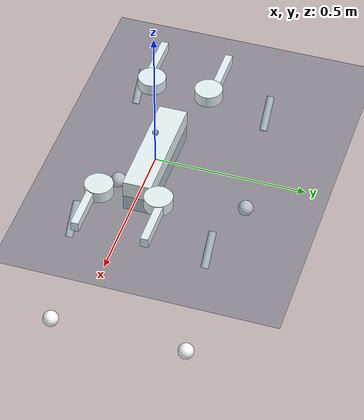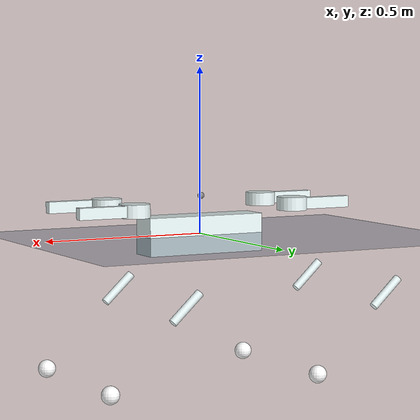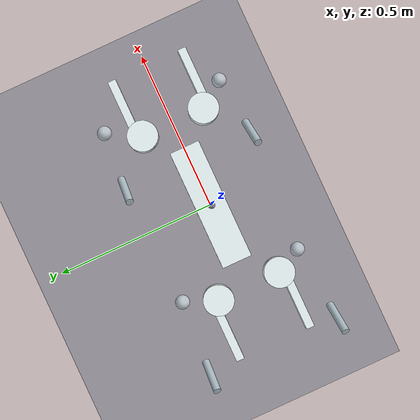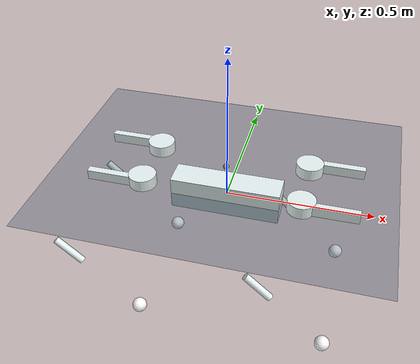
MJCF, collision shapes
<mujoco model="bruce scene">
  <include file="bruce_mj.xml"/>

  <statistic center="0 0 .3" extent="1.2"/>

  <visual>
    <headlight diffuse="0.6 0.6 0.6" ambient="0.3 0.3 0.3" specular="0 0 0"/>
    <rgba haze="0.15 0.25 0.35 1"/>
    <global azimuth="120" elevation="-20"/>
  </visual>

  <asset>
    <texture type="skybox" builtin="gradient" rgb1="0.3 0.5 0.7" rgb2="0 0 0" width="512" height="3072"/>
    <texture type="2d" name="groundplane" builtin="checker" mark="edge" rgb1="0.2 0.3 0.4" rgb2="0.1 0.2 0.3"
      markrgb="0.8 0.8 0.8" width="300" height="300"/>
    <material name="groundplane" texture="groundplane" texuniform="true" texrepeat="5 5" reflectance="0.2"/>
  </asset>

  <worldbody>
    <light pos="0 0 1.5" dir="0 0 -1" directional="true"/>
    <geom name="floor" size="0 0 0.05" type="plane" material="groundplane"/>
  </worldbody>
</mujoco>

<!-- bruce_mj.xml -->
<mujoco model="bruce">
  <compiler angle="radian" meshdir="assets" autolimits="true" balanceinertia="true"/>
  <option cone="elliptic" impratio="100" timestep="0.002"/>

  <default>
    <default class="visual">
      <geom contype="0" conaffinity="0" group="2" material="gray"/>
    </default>
    <default class="collision">
      <geom group="3" material="metal" friction="0.4 0.02 0.01"/>
    </default>
    <default class="actuator">
      <motor ctrlrange="-200 200" ctrllimited="true"/>
    </default>

    <!-- 关节默认参数 -->
    <default class="abduction">
      <joint axis="1 0 0" damping="0.1" armature="0.01" frictionloss="0.2"/>
    </default>
    <default class="hip">
      <joint axis="0 1 0" damping="0.1" armature="0.01" frictionloss="0.2"/>
    </default>
    <default class="knee">
      <joint axis="0 1 0" damping="0.1" armature="0.01" frictionloss="0.2"/>
    </default>
  </default>

    <asset>
        <material name="metal" rgba=".9 .95 .95 1" />
        <material name="black" rgba="0 0 0 1" />
        <material name="white" rgba="1 1 1 1" />
        <material name="gray" rgba="0.75294 0.75294 0.75294 1" />
        <material name="transparent" rgba="1 1 1 0.01" />

        <!-- 基座网格 -->
        <mesh file="base_link.STL" />

        <!-- 腿部网格 -->
        <mesh file="Link_FL_Hip.STL" />
        <mesh file="Link_FL_Thigh.STL" />
        <mesh file="Link_FL_Calf.STL" />
        <mesh file="Link_FL_Foot.STL" />

        <mesh file="Link_FR_Hip.STL" />
        <mesh file="Link_FR_Thigh.STL" />
        <mesh file="Link_FR_Calf.STL" />
        <mesh file="Link_FR_Foot.STL" />

        <mesh file="Link_HL_Hip.STL" />
        <mesh file="Link_HL_Thigh.STL" />
        <mesh file="Link_HL_Calf.STL" />
        <mesh file="Link_HL_Foot.STL" />

        <mesh file="Link_HR_Hip.STL" />
        <mesh file="Link_HR_Thigh.STL" />
        <mesh file="Link_HR_Calf.STL" />
        <mesh file="Link_HR_Foot.STL" />

        <mesh file="Link_Imu.STL" />
    </asset>

    <worldbody>
        <body name="base_link" pos="0 0 0">
            <inertial pos="0.00014047 -0.00088602 0.074729" mass="23.629" diaginertia="0.054484 0.12489 0.12873"/>
            <freejoint/>
            <geom type="mesh" mesh="base_link" material="gray" class="visual"/>
            <geom size="0.1881 0.04675 0.057" type="box" class="collision"/>

            <!-- IMU -->
            <site name="imu" pos="-0.0040103 0 0.114" size="0.01"/>
            <geom pos="-0.0040103 0 0.114" type="mesh" mesh="Link_Imu" class="visual" material="white"/>

            <!-- 前左腿 -->
            <body name="FL_hip" pos="0.2635 0.0975 0.088">
                <inertial pos="0.071488 -0.01672 -4.7324E-05" mass="2.9" diaginertia="0.00042335 0.0010234 0.00063315"/>
                <joint name="FL_hip_joint" class="abduction" range="-0.78 0.78"/>
                <geom type="mesh" mesh="Link_FL_Hip" class="visual"/>
                <geom size="0.046 0.02" type="cylinder" class="collision"/>
                <body name="FL_thigh" pos="0.07725 0.01475 0">
                    <inertial pos="-0.044216 0.098313 -0.056091" mass="5.58" diaginertia="0.013192 0.022095 0.0093309"/>
                    <joint name="FL_thigh_joint" class="hip" range="-1.22 2.61"/>
                    <geom type="mesh" mesh="Link_FL_Thigh" class="visual"/>
                    <geom size="0.1065 0.01225 0.017" type="box" class="collision"/>
                    <body name="FL_calf" pos="-0.17662 0.11925 -0.27282" quat="0.916975 0 -0.398944 0">
                        <inertial pos="0.00831504007924233 2.04280116085087E-05 -0.149346339600864" mass="1.0558984918551" diaginertia="0.0158759027698112 0.0161104978528813 0.000461995654151211"/>
                        <joint name="FL_calf_joint" class="knee" range="-1.3 0.52"/>
                        <geom type="mesh" mesh="Link_FL_Calf" class="visual"/>
                        <geom size="0.013 0.06" type="cylinder" class="collision"/>
                        <body name="FL_foot" pos="-0.0052369 -3.0756E-05 -0.33328" quat="0.916975 0 0.398944 0">
                            <inertial pos="2.03976966761665E-07 -3.49370387453529E-06 -0.0232846790067169" mass="0.207210160440462" diaginertia="8.28679461308315E-05 0.000134761885893141 0.000154364742055223"/>
                            <geom type="mesh" mesh="Link_FL_Foot" material="black" class="visual"/>
                            <geom size="0.027" type="sphere" class="collision" material="transparent"/>
                            <site name="FL_foot_site" pos="0 0 0" size="0.005"/>
                        </body>
                    </body>
                </body>
            </body>

            <!-- 前右腿-->
            <body name="FR_hip" pos="0.2635 -0.0975 0.088">
                <inertial pos="0.071488 0.01672 4.7324E-05" mass="2.9" diaginertia="0.00042335 0.0010234 0.00063315"/>
                <joint name="FR_hip_joint" class="abduction" range="-0.78 0.78"/>
                <geom type="mesh" mesh="Link_FR_Hip" class="visual"/>
                <geom size="0.046 0.02" type="cylinder" class="collision"/>
                <body name="FR_thigh" pos="0.07725 -0.01475 0">
                    <inertial pos="-0.044283 -0.09836 -0.056051" mass="5.58" diaginertia="0.013228 0.022116 0.0093162"/>
                    <joint name="FR_thigh_joint" class="hip" range="-1.22 2.61"/>
                    <geom type="mesh" mesh="Link_FR_Thigh" class="visual"/>
                    <geom size="0.1065 0.01225 0.017" type="box" class="collision"/>
                    <body name="FR_calf" pos="-0.17662 -0.11925 -0.27282" quat="0.916975 0 -0.398944 0">
                        <inertial pos="0.00831504035394826 2.04277784137952E-05 -0.149346341163595" mass="1.05589847316517" diaginertia="0.0158759025959391 0.016110497677588 0.000461995644802376"/>
                        <joint name="FR_calf_joint" class="knee" range="-1.3 0.52"/>
                        <geom type="mesh" mesh="Link_FR_Calf" class="visual"/>
                        <geom size="0.013 0.06" type="cylinder" class="collision"/>
                        <body name="FR_foot" pos="-0.0052369 -3.0756E-05 -0.33328" quat="0.916975 0 0.398944 0">
                            <inertial pos="2.03977359281016E-07 -3.49370187453529E-06 -0.0232846790067169" mass="0.207210160440462" diaginertia="8.28679461308315E-05 0.000134761885893141 0.000154364742055223"/>
                            <geom type="mesh" mesh="Link_FR_Foot" material="black" class="visual"/>
                            <geom size="0.027" type="sphere" class="collision" material="transparent"/>
                            <site name="FR_foot_site" pos="0 0 0" size="0.005"/>
                        </body>
                    </body>
                </body>
            </body>

            <!-- 后左腿-->
            <body name="HL_hip" pos="-0.2635 0.0975 0.088">
                <inertial pos="-0.071488 -0.01672 4.7324E-05" mass="2.9" diaginertia="0.00042335 0.0010234 0.00063315"/>
                <joint name="HL_hip_joint" class="abduction" range="-0.78 0.78"/>
                <geom type="mesh" mesh="Link_HL_Hip" class="visual"/>
                <geom size="0.046 0.02" type="cylinder" class="collision"/>
                <body name="HL_thigh" pos="-0.07725 0.01475 0">
                    <inertial pos="-0.044216 0.098313 -0.056091" mass="5.58" diaginertia="0.013192 0.022095 0.0093309"/>
                    <joint name="HL_thigh_joint" class="hip" range="-1.22 2.61"/>
                    <geom type="mesh" mesh="Link_HL_Thigh" class="visual"/>
                    <geom size="0.1065 0.01225 0.017" type="box" class="collision"/>
                    <body name="HL_calf" pos="-0.17662 0.11925 -0.27282" quat="0.916975 0 -0.398944 0">
                        <inertial pos="0.00831504038311021 2.04282154486757E-05 -0.14934634134056" mass="1.05589847179624" diaginertia="0.0158759025719917 0.0161104976518646 0.000461995645412917"/>
                        <joint name="HL_calf_joint" class="knee" range="-1.3 0.52"/>
                        <geom type="mesh" mesh="Link_HL_Calf" class="visual"/>
                        <geom size="0.013 0.06" type="cylinder" class="collision"/>
                        <body name="HL_foot" pos="-0.0052369 -3.0756E-05 -0.33328" quat="0.916975 0 0.398944 0">
                            <inertial pos="2.03976984913812E-07 -3.49370198221566E-06 -0.0232846790072918" mass="0.207210160452256" diaginertia="8.28679461309755E-05 0.000134761885893068 0.000154364742053954"/>
                            <geom type="mesh" mesh="Link_HL_Foot" material="black" class="visual"/>
                            <geom size="0.027" type="sphere" class="collision" material="transparent"/>
                            <site name="HL_foot_site" pos="0 0 0" size="0.005"/>
                        </body>
                    </body>
                </body>
            </body>

            <!-- 后右腿-->
            <body name="HR_hip" pos="-0.2635 -0.0975 0.088">
                <inertial pos="-0.071488 0.01672 -4.7324E-05" mass="2.9" diaginertia="0.00042335 0.0010234 0.00063315"/>
                <joint name="HR_hip_joint" class="abduction" range="-0.78 0.78"/>
                <geom type="mesh" mesh="Link_HR_Hip" class="visual"/>
                <geom size="0.046 0.02" type="cylinder" class="collision"/>
                <body name="HR_thigh" pos="-0.07725 -0.01475 0">
                    <inertial pos="-0.044283 -0.09836 -0.056051" mass="5.58" diaginertia="0.013228 0.022116 0.0093162"/>
                    <joint name="HR_thigh_joint" class="hip" range="-1.22 2.61"/>
                    <geom type="mesh" mesh="Link_HR_Thigh" class="visual"/>
                    <geom size="0.1065 0.01225 0.017" type="box" class="collision"/>
                    <body name="HR_calf" pos="-0.17662 -0.11925 -0.27282" quat="0.916975 0 -0.398944 0">
                        <inertial pos="0.00831504035394826 2.04277784137952E-05 -0.149346341163595" mass="1.05589847316517" diaginertia="0.0158759025959391 0.016110497677588 0.000461995644802376"/>
                        <joint name="HR_calf_joint" class="knee" range="-1.3 0.52"/>
                        <geom type="mesh" mesh="Link_HR_Calf" class="visual"/>
                        <geom size="0.013 0.06" type="cylinder" class="collision"/>
                        <body name="HR_foot" pos="-0.0052369 -3.0756E-05 -0.33328" quat="0.916975 0 0.398944 0">
                            <inertial pos="2.03977359281016E-07 -3.49370187453529E-06 -0.0232846790067169" mass="0.207210160452256" diaginertia="8.28679461309755E-05 0.000134761885893068 0.000154364742053954"/>
                            <geom type="mesh" mesh="Link_HR_Foot" material="black" class="visual"/>
                            <geom size="0.027" type="sphere" class="collision" material="transparent"/>
                            <site name="HR_foot_site" pos="0 0 0" size="0.005"/>
                        </body>
                    </body>
                </body>
            </body>

        </body>
    </worldbody>

    <actuator>
        <motor joint="FL_hip_joint" name="FL_hip_motor" class="actuator"/>
        <motor joint="FL_thigh_joint" name="FL_thigh_motor" class="actuator"/>
        <motor joint="FL_calf_joint" name="FL_calf_motor" class="actuator"/>

        <motor joint="FR_hip_joint" name="FR_hip_motor" class="actuator"/>
        <motor joint="FR_thigh_joint" name="FR_thigh_motor" class="actuator"/>
        <motor joint="FR_calf_joint" name="FR_calf_motor" class="actuator"/>

        <motor joint="HL_hip_joint" name="HL_hip_motor" class="actuator"/>
        <motor joint="HL_thigh_joint" name="HL_thigh_motor" class="actuator"/>
        <motor joint="HL_calf_joint" name="HL_calf_motor" class="actuator"/>

        <motor joint="HR_hip_joint" name="HR_hip_motor" class="actuator"/>
        <motor joint="HR_thigh_joint" name="HR_thigh_motor" class="actuator"/>
        <motor joint="HR_calf_joint" name="HR_calf_motor" class="actuator"/>
    </actuator>

    <sensor>
        <!-- 关节位置传感器 -->
        <jointpos name="FL_hip_pos" joint="FL_hip_joint"/>
        <jointpos name="FL_thigh_pos" joint="FL_thigh_joint"/>
        <jointpos name="FL_calf_pos" joint="FL_calf_joint"/>

        <jointpos name="FR_hip_pos" joint="FR_hip_joint"/>
        <jointpos name="FR_thigh_pos" joint="FR_thigh_joint"/>
        <jointpos name="FR_calf_pos" joint="FR_calf_joint"/>

        <jointpos name="HL_hip_pos" joint="HL_hip_joint"/>
        <jointpos name="HL_thigh_pos" joint="HL_thigh_joint"/>
        <jointpos name="HL_calf_pos" joint="HL_calf_joint"/>

        <jointpos name="HR_hip_pos" joint="HR_hip_joint"/>
        <jointpos name="HR_thigh_pos" joint="HR_thigh_joint"/>
        <jointpos name="HR_calf_pos" joint="HR_calf_joint"/>

        <!-- 关节速度传感器 -->
        <jointvel name="FL_hip_vel" joint="FL_hip_joint"/>
        <jointvel name="FL_thigh_vel" joint="FL_thigh_joint"/>
        <jointvel name="FL_calf_vel" joint="FL_calf_joint"/>

        <jointvel name="FR_hip_vel" joint="FR_hip_joint"/>
        <jointvel name="FR_thigh_vel" joint="FR_thigh_joint"/>
        <jointvel name="FR_calf_vel" joint="FR_calf_joint"/>

        <jointvel name="HL_hip_vel" joint="HL_hip_joint"/>
        <jointvel name="HL_thigh_vel" joint="HL_thigh_joint"/>
        <jointvel name="HL_calf_vel" joint="HL_calf_joint"/>

        <jointvel name="HR_hip_vel" joint="HR_hip_joint"/>
        <jointvel name="HR_thigh_vel" joint="HR_thigh_joint"/>
        <jointvel name="HR_calf_vel" joint="HR_calf_joint"/>

        <!-- 关节扭矩传感器 -->
        <jointactuatorfrc name="FL_hip_torque" joint="FL_hip_joint"/>
        <jointactuatorfrc name="FL_thigh_torque" joint="FL_thigh_joint"/>
        <jointactuatorfrc name="FL_calf_torque" joint="FL_calf_joint"/>

        <jointactuatorfrc name="FR_hip_torque" joint="FR_hip_joint"/>
        <jointactuatorfrc name="FR_thigh_torque" joint="FR_thigh_joint"/>
        <jointactuatorfrc name="FR_calf_torque" joint="FR_calf_joint"/>

        <jointactuatorfrc name="HL_hip_torque" joint="HL_hip_joint"/>
        <jointactuatorfrc name="HL_thigh_torque" joint="HL_thigh_joint"/>
        <jointactuatorfrc name="HL_calf_torque" joint="HL_calf_joint"/>

        <jointactuatorfrc name="HR_hip_torque" joint="HR_hip_joint"/>
        <jointactuatorfrc name="HR_thigh_torque" joint="HR_thigh_joint"/>
        <jointactuatorfrc name="HR_calf_torque" joint="HR_calf_joint"/>

        <!-- IMU传感器 -->
        <accelerometer name="imu_acc" site="imu"/>
        <gyro name="imu_gyro" site="imu"/>
        <framequat name="imu_quat" objtype="site" objname="imu"/>
        <framepos name="base_pos" objtype="site" objname="imu"/>
        <framelinvel name="base_vel" objtype="site" objname="imu"/>
        <frameangvel name="base_angvel" objtype="site" objname="imu"/>

    </sensor>

</mujoco>
